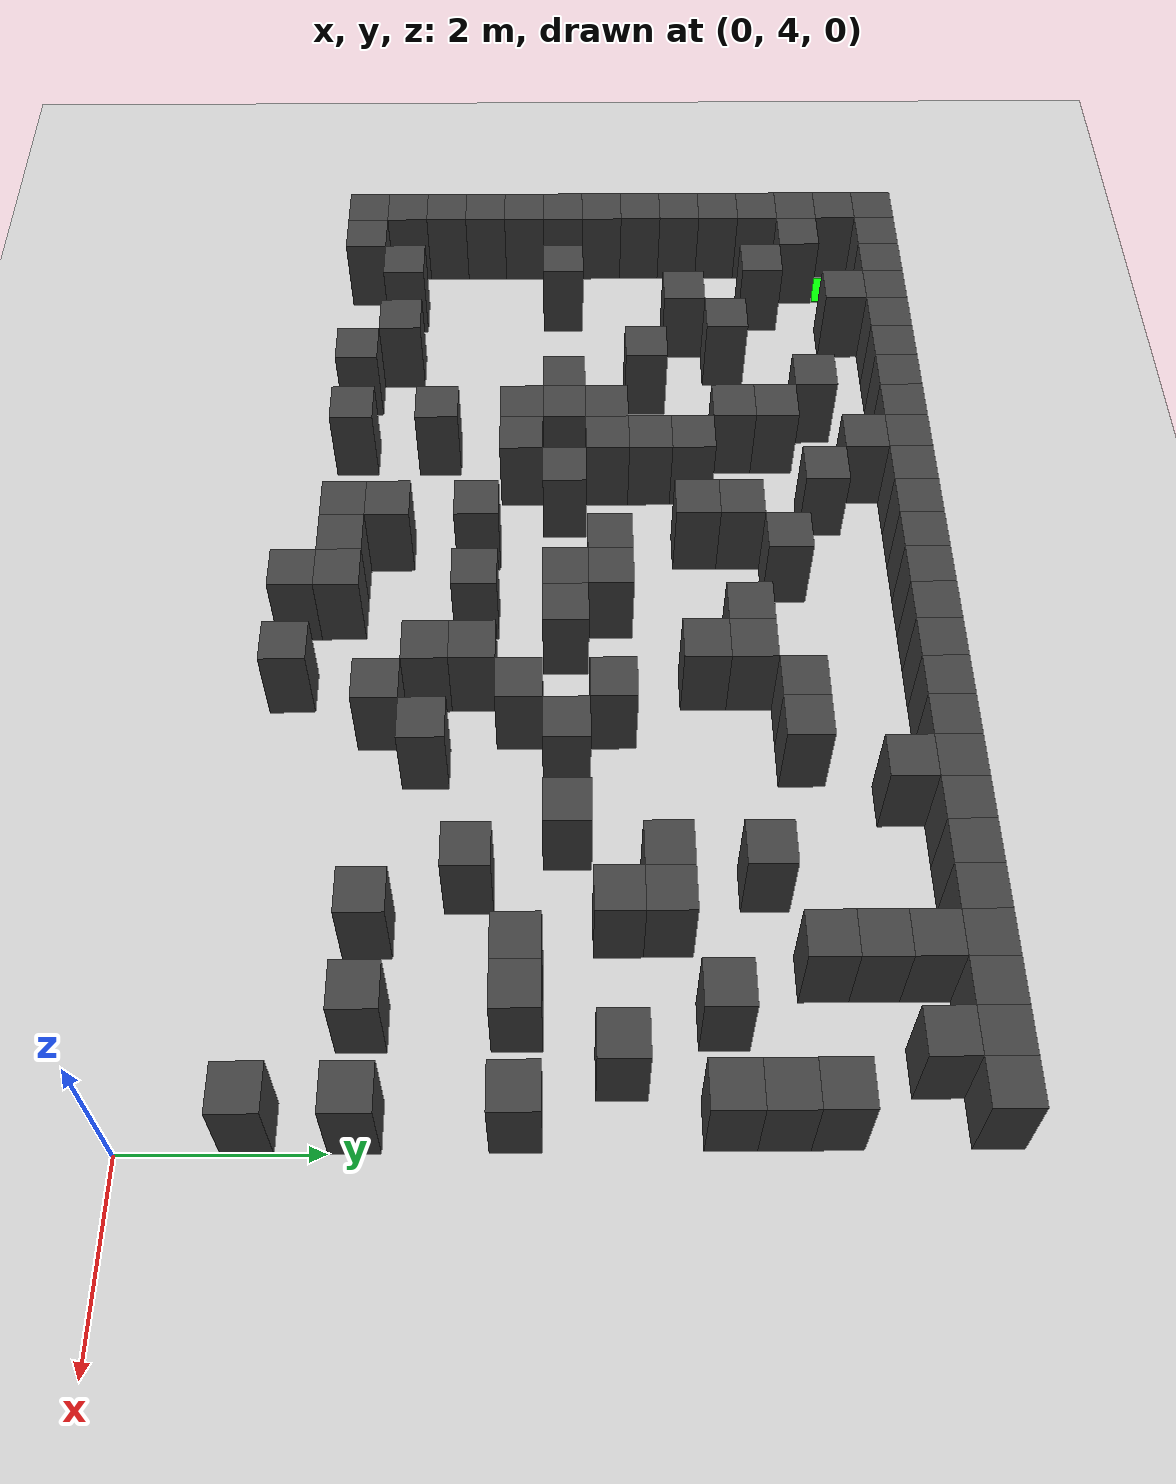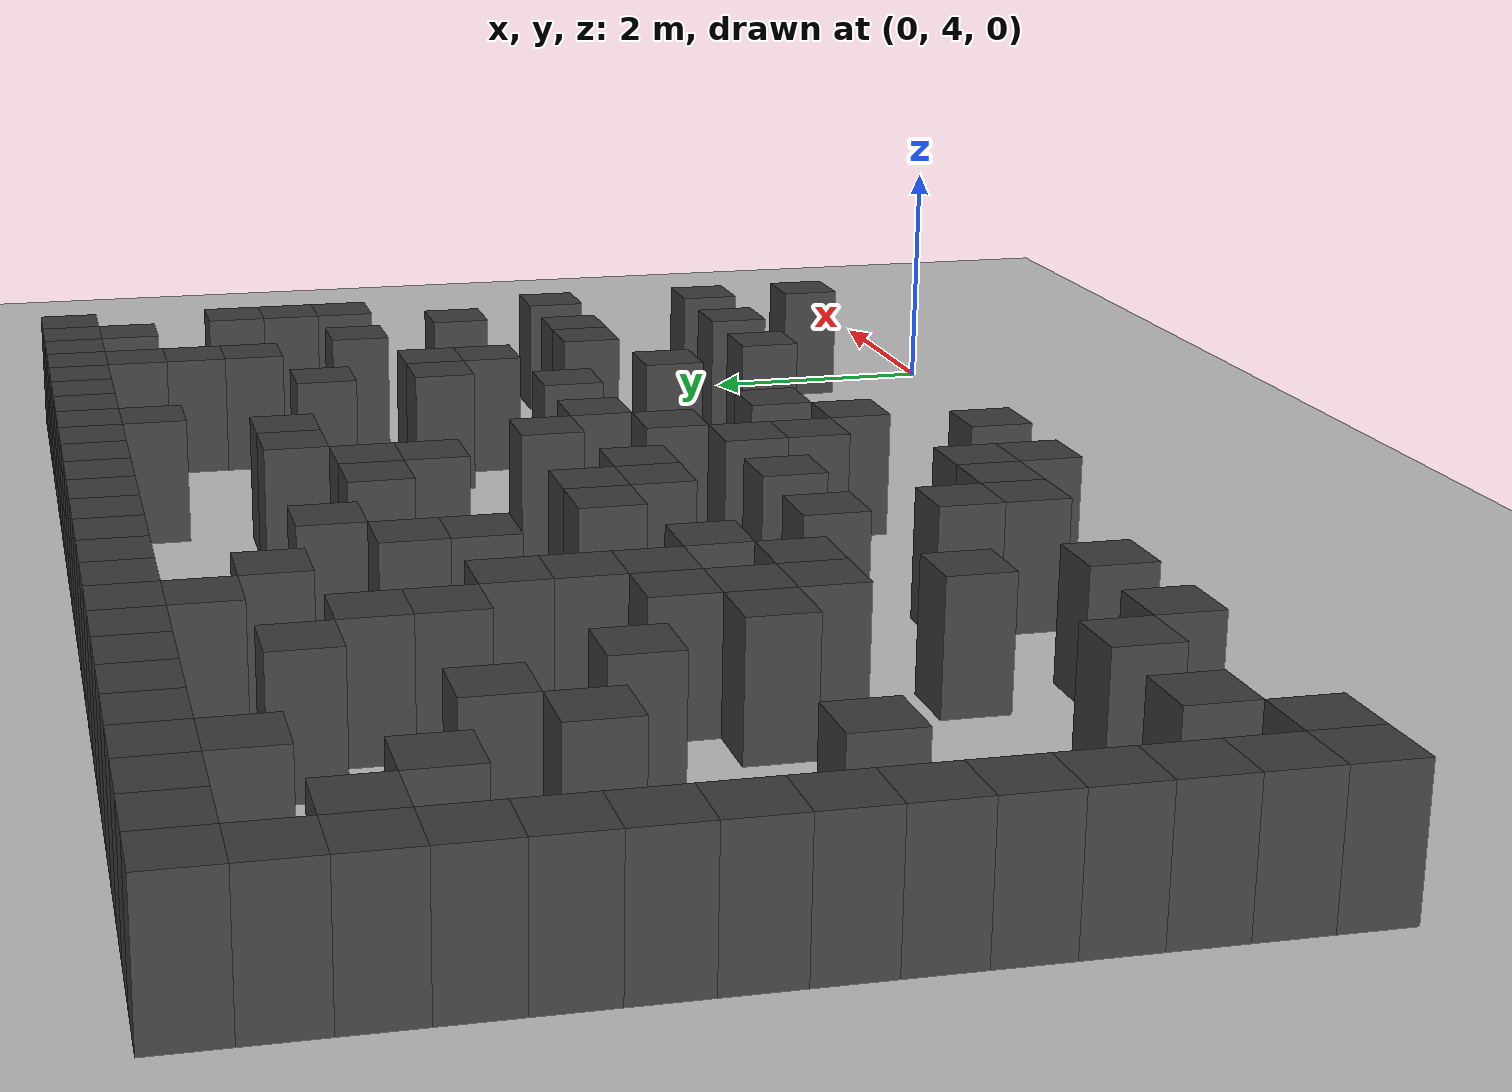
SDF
<sdf version="1.7">
 <world name="map_4492">
  <model name="ground_plane">
   <static>true</static>
   <link name="link">
    <collision name="collision">
     <geometry><plane><normal>0 0 1</normal><size>200 200</size></plane></geometry>
    </collision>
    <visual name="visual">
     <geometry><plane><normal>0 0 1</normal><size>200 200</size></plane></geometry>
     <material><ambient>0.8 0.8 0.8 1</ambient><diffuse>0.8 0.8 0.8 1</diffuse></material>
    </visual>
   </link>
  </model>
  <model name="maze_environment">
   <static>true</static>
   <link name="wall_0">
    <pose>-12.250 12.250 0.500 0 0 0</pose>
    <collision name="col"><geometry><box><size>0.5 0.5 1.0</size></box></geometry></collision>
    <visual name="vis">
     <geometry><box><size>0.5 0.5 1.0</size></box></geometry>
     <material><ambient>0.15 0.15 0.15 1</ambient><diffuse>0.25 0.25 0.25 1</diffuse></material>
    </visual>
   </link>
   <link name="wall_1">
    <pose>-11.750 12.250 0.500 0 0 0</pose>
    <collision name="col"><geometry><box><size>0.5 0.5 1.0</size></box></geometry></collision>
    <visual name="vis">
     <geometry><box><size>0.5 0.5 1.0</size></box></geometry>
     <material><ambient>0.15 0.15 0.15 1</ambient><diffuse>0.25 0.25 0.25 1</diffuse></material>
    </visual>
   </link>
   <link name="wall_2">
    <pose>-11.250 12.250 0.500 0 0 0</pose>
    <collision name="col"><geometry><box><size>0.5 0.5 1.0</size></box></geometry></collision>
    <visual name="vis">
     <geometry><box><size>0.5 0.5 1.0</size></box></geometry>
     <material><ambient>0.15 0.15 0.15 1</ambient><diffuse>0.25 0.25 0.25 1</diffuse></material>
    </visual>
   </link>
   <link name="wall_3">
    <pose>-10.750 12.250 0.500 0 0 0</pose>
    <collision name="col"><geometry><box><size>0.5 0.5 1.0</size></box></geometry></collision>
    <visual name="vis">
     <geometry><box><size>0.5 0.5 1.0</size></box></geometry>
     <material><ambient>0.15 0.15 0.15 1</ambient><diffuse>0.25 0.25 0.25 1</diffuse></material>
    </visual>
   </link>
   <link name="wall_4">
    <pose>-10.250 12.250 0.500 0 0 0</pose>
    <collision name="col"><geometry><box><size>0.5 0.5 1.0</size></box></geometry></collision>
    <visual name="vis">
     <geometry><box><size>0.5 0.5 1.0</size></box></geometry>
     <material><ambient>0.15 0.15 0.15 1</ambient><diffuse>0.25 0.25 0.25 1</diffuse></material>
    </visual>
   </link>
   <link name="wall_5">
    <pose>-9.750 12.250 0.500 0 0 0</pose>
    <collision name="col"><geometry><box><size>0.5 0.5 1.0</size></box></geometry></collision>
    <visual name="vis">
     <geometry><box><size>0.5 0.5 1.0</size></box></geometry>
     <material><ambient>0.15 0.15 0.15 1</ambient><diffuse>0.25 0.25 0.25 1</diffuse></material>
    </visual>
   </link>
   <link name="wall_6">
    <pose>-9.250 12.250 0.500 0 0 0</pose>
    <collision name="col"><geometry><box><size>0.5 0.5 1.0</size></box></geometry></collision>
    <visual name="vis">
     <geometry><box><size>0.5 0.5 1.0</size></box></geometry>
     <material><ambient>0.15 0.15 0.15 1</ambient><diffuse>0.25 0.25 0.25 1</diffuse></material>
    </visual>
   </link>
   <link name="wall_7">
    <pose>-8.750 12.250 0.500 0 0 0</pose>
    <collision name="col"><geometry><box><size>0.5 0.5 1.0</size></box></geometry></collision>
    <visual name="vis">
     <geometry><box><size>0.5 0.5 1.0</size></box></geometry>
     <material><ambient>0.15 0.15 0.15 1</ambient><diffuse>0.25 0.25 0.25 1</diffuse></material>
    </visual>
   </link>
   <link name="wall_8">
    <pose>-8.250 12.250 0.500 0 0 0</pose>
    <collision name="col"><geometry><box><size>0.5 0.5 1.0</size></box></geometry></collision>
    <visual name="vis">
     <geometry><box><size>0.5 0.5 1.0</size></box></geometry>
     <material><ambient>0.15 0.15 0.15 1</ambient><diffuse>0.25 0.25 0.25 1</diffuse></material>
    </visual>
   </link>
   <link name="wall_9">
    <pose>-7.750 12.250 0.500 0 0 0</pose>
    <collision name="col"><geometry><box><size>0.5 0.5 1.0</size></box></geometry></collision>
    <visual name="vis">
     <geometry><box><size>0.5 0.5 1.0</size></box></geometry>
     <material><ambient>0.15 0.15 0.15 1</ambient><diffuse>0.25 0.25 0.25 1</diffuse></material>
    </visual>
   </link>
   <link name="wall_10">
    <pose>-7.250 12.250 0.500 0 0 0</pose>
    <collision name="col"><geometry><box><size>0.5 0.5 1.0</size></box></geometry></collision>
    <visual name="vis">
     <geometry><box><size>0.5 0.5 1.0</size></box></geometry>
     <material><ambient>0.15 0.15 0.15 1</ambient><diffuse>0.25 0.25 0.25 1</diffuse></material>
    </visual>
   </link>
   <link name="wall_11">
    <pose>-6.750 12.250 0.500 0 0 0</pose>
    <collision name="col"><geometry><box><size>0.5 0.5 1.0</size></box></geometry></collision>
    <visual name="vis">
     <geometry><box><size>0.5 0.5 1.0</size></box></geometry>
     <material><ambient>0.15 0.15 0.15 1</ambient><diffuse>0.25 0.25 0.25 1</diffuse></material>
    </visual>
   </link>
   <link name="wall_12">
    <pose>-6.250 12.250 0.500 0 0 0</pose>
    <collision name="col"><geometry><box><size>0.5 0.5 1.0</size></box></geometry></collision>
    <visual name="vis">
     <geometry><box><size>0.5 0.5 1.0</size></box></geometry>
     <material><ambient>0.15 0.15 0.15 1</ambient><diffuse>0.25 0.25 0.25 1</diffuse></material>
    </visual>
   </link>
   <link name="wall_13">
    <pose>-5.750 12.250 0.500 0 0 0</pose>
    <collision name="col"><geometry><box><size>0.5 0.5 1.0</size></box></geometry></collision>
    <visual name="vis">
     <geometry><box><size>0.5 0.5 1.0</size></box></geometry>
     <material><ambient>0.15 0.15 0.15 1</ambient><diffuse>0.25 0.25 0.25 1</diffuse></material>
    </visual>
   </link>
   <link name="wall_14">
    <pose>-5.250 12.250 0.500 0 0 0</pose>
    <collision name="col"><geometry><box><size>0.5 0.5 1.0</size></box></geometry></collision>
    <visual name="vis">
     <geometry><box><size>0.5 0.5 1.0</size></box></geometry>
     <material><ambient>0.15 0.15 0.15 1</ambient><diffuse>0.25 0.25 0.25 1</diffuse></material>
    </visual>
   </link>
   <link name="wall_15">
    <pose>-4.750 12.250 0.500 0 0 0</pose>
    <collision name="col"><geometry><box><size>0.5 0.5 1.0</size></box></geometry></collision>
    <visual name="vis">
     <geometry><box><size>0.5 0.5 1.0</size></box></geometry>
     <material><ambient>0.15 0.15 0.15 1</ambient><diffuse>0.25 0.25 0.25 1</diffuse></material>
    </visual>
   </link>
   <link name="wall_16">
    <pose>-4.250 12.250 0.500 0 0 0</pose>
    <collision name="col"><geometry><box><size>0.5 0.5 1.0</size></box></geometry></collision>
    <visual name="vis">
     <geometry><box><size>0.5 0.5 1.0</size></box></geometry>
     <material><ambient>0.15 0.15 0.15 1</ambient><diffuse>0.25 0.25 0.25 1</diffuse></material>
    </visual>
   </link>
   <link name="wall_17">
    <pose>-3.750 12.250 0.500 0 0 0</pose>
    <collision name="col"><geometry><box><size>0.5 0.5 1.0</size></box></geometry></collision>
    <visual name="vis">
     <geometry><box><size>0.5 0.5 1.0</size></box></geometry>
     <material><ambient>0.15 0.15 0.15 1</ambient><diffuse>0.25 0.25 0.25 1</diffuse></material>
    </visual>
   </link>
   <link name="wall_18">
    <pose>-3.250 12.250 0.500 0 0 0</pose>
    <collision name="col"><geometry><box><size>0.5 0.5 1.0</size></box></geometry></collision>
    <visual name="vis">
     <geometry><box><size>0.5 0.5 1.0</size></box></geometry>
     <material><ambient>0.15 0.15 0.15 1</ambient><diffuse>0.25 0.25 0.25 1</diffuse></material>
    </visual>
   </link>
   <link name="wall_19">
    <pose>-2.750 12.250 0.500 0 0 0</pose>
    <collision name="col"><geometry><box><size>0.5 0.5 1.0</size></box></geometry></collision>
    <visual name="vis">
     <geometry><box><size>0.5 0.5 1.0</size></box></geometry>
     <material><ambient>0.15 0.15 0.15 1</ambient><diffuse>0.25 0.25 0.25 1</diffuse></material>
    </visual>
   </link>
   <link name="wall_20">
    <pose>-2.250 12.250 0.500 0 0 0</pose>
    <collision name="col"><geometry><box><size>0.5 0.5 1.0</size></box></geometry></collision>
    <visual name="vis">
     <geometry><box><size>0.5 0.5 1.0</size></box></geometry>
     <material><ambient>0.15 0.15 0.15 1</ambient><diffuse>0.25 0.25 0.25 1</diffuse></material>
    </visual>
   </link>
   <link name="wall_21">
    <pose>-1.750 12.250 0.500 0 0 0</pose>
    <collision name="col"><geometry><box><size>0.5 0.5 1.0</size></box></geometry></collision>
    <visual name="vis">
     <geometry><box><size>0.5 0.5 1.0</size></box></geometry>
     <material><ambient>0.15 0.15 0.15 1</ambient><diffuse>0.25 0.25 0.25 1</diffuse></material>
    </visual>
   </link>
   <link name="wall_22">
    <pose>-1.250 12.250 0.500 0 0 0</pose>
    <collision name="col"><geometry><box><size>0.5 0.5 1.0</size></box></geometry></collision>
    <visual name="vis">
     <geometry><box><size>0.5 0.5 1.0</size></box></geometry>
     <material><ambient>0.15 0.15 0.15 1</ambient><diffuse>0.25 0.25 0.25 1</diffuse></material>
    </visual>
   </link>
   <link name="wall_23">
    <pose>-0.750 12.250 0.500 0 0 0</pose>
    <collision name="col"><geometry><box><size>0.5 0.5 1.0</size></box></geometry></collision>
    <visual name="vis">
     <geometry><box><size>0.5 0.5 1.0</size></box></geometry>
     <material><ambient>0.15 0.15 0.15 1</ambient><diffuse>0.25 0.25 0.25 1</diffuse></material>
    </visual>
   </link>
   <link name="wall_24">
    <pose>-0.250 12.250 0.500 0 0 0</pose>
    <collision name="col"><geometry><box><size>0.5 0.5 1.0</size></box></geometry></collision>
    <visual name="vis">
     <geometry><box><size>0.5 0.5 1.0</size></box></geometry>
     <material><ambient>0.15 0.15 0.15 1</ambient><diffuse>0.25 0.25 0.25 1</diffuse></material>
    </visual>
   </link>
   <link name="wall_50">
    <pose>-12.250 11.750 0.500 0 0 0</pose>
    <collision name="col"><geometry><box><size>0.5 0.5 1.0</size></box></geometry></collision>
    <visual name="vis">
     <geometry><box><size>0.5 0.5 1.0</size></box></geometry>
     <material><ambient>0.15 0.15 0.15 1</ambient><diffuse>0.25 0.25 0.25 1</diffuse></material>
    </visual>
   </link>
   <link name="wall_51">
    <pose>-10.750 11.750 0.500 0 0 0</pose>
    <collision name="col"><geometry><box><size>0.5 0.5 1.0</size></box></geometry></collision>
    <visual name="vis">
     <geometry><box><size>0.5 0.5 1.0</size></box></geometry>
     <material><ambient>0.15 0.15 0.15 1</ambient><diffuse>0.25 0.25 0.25 1</diffuse></material>
    </visual>
   </link>
   <link name="wall_52">
    <pose>-8.250 11.750 0.500 0 0 0</pose>
    <collision name="col"><geometry><box><size>0.5 0.5 1.0</size></box></geometry></collision>
    <visual name="vis">
     <geometry><box><size>0.5 0.5 1.0</size></box></geometry>
     <material><ambient>0.15 0.15 0.15 1</ambient><diffuse>0.25 0.25 0.25 1</diffuse></material>
    </visual>
   </link>
   <link name="wall_53">
    <pose>-3.750 11.750 0.500 0 0 0</pose>
    <collision name="col"><geometry><box><size>0.5 0.5 1.0</size></box></geometry></collision>
    <visual name="vis">
     <geometry><box><size>0.5 0.5 1.0</size></box></geometry>
     <material><ambient>0.15 0.15 0.15 1</ambient><diffuse>0.25 0.25 0.25 1</diffuse></material>
    </visual>
   </link>
   <link name="wall_54">
    <pose>-1.750 11.750 0.500 0 0 0</pose>
    <collision name="col"><geometry><box><size>0.5 0.5 1.0</size></box></geometry></collision>
    <visual name="vis">
     <geometry><box><size>0.5 0.5 1.0</size></box></geometry>
     <material><ambient>0.15 0.15 0.15 1</ambient><diffuse>0.25 0.25 0.25 1</diffuse></material>
    </visual>
   </link>
   <link name="wall_55">
    <pose>-0.750 11.750 0.500 0 0 0</pose>
    <collision name="col"><geometry><box><size>0.5 0.5 1.0</size></box></geometry></collision>
    <visual name="vis">
     <geometry><box><size>0.5 0.5 1.0</size></box></geometry>
     <material><ambient>0.15 0.15 0.15 1</ambient><diffuse>0.25 0.25 0.25 1</diffuse></material>
    </visual>
   </link>
   <link name="wall_63">
    <pose>-12.250 11.250 0.500 0 0 0</pose>
    <collision name="col"><geometry><box><size>0.5 0.5 1.0</size></box></geometry></collision>
    <visual name="vis">
     <geometry><box><size>0.5 0.5 1.0</size></box></geometry>
     <material><ambient>0.15 0.15 0.15 1</ambient><diffuse>0.25 0.25 0.25 1</diffuse></material>
    </visual>
   </link>
   <link name="wall_64">
    <pose>-11.750 11.250 0.500 0 0 0</pose>
    <collision name="col"><geometry><box><size>0.5 0.5 1.0</size></box></geometry></collision>
    <visual name="vis">
     <geometry><box><size>0.5 0.5 1.0</size></box></geometry>
     <material><ambient>0.15 0.15 0.15 1</ambient><diffuse>0.25 0.25 0.25 1</diffuse></material>
    </visual>
   </link>
   <link name="wall_65">
    <pose>-9.250 11.250 0.500 0 0 0</pose>
    <collision name="col"><geometry><box><size>0.5 0.5 1.0</size></box></geometry></collision>
    <visual name="vis">
     <geometry><box><size>0.5 0.5 1.0</size></box></geometry>
     <material><ambient>0.15 0.15 0.15 1</ambient><diffuse>0.25 0.25 0.25 1</diffuse></material>
    </visual>
   </link>
   <link name="wall_66">
    <pose>-7.750 11.250 0.500 0 0 0</pose>
    <collision name="col"><geometry><box><size>0.5 0.5 1.0</size></box></geometry></collision>
    <visual name="vis">
     <geometry><box><size>0.5 0.5 1.0</size></box></geometry>
     <material><ambient>0.15 0.15 0.15 1</ambient><diffuse>0.25 0.25 0.25 1</diffuse></material>
    </visual>
   </link>
   <link name="wall_67">
    <pose>-1.750 11.250 0.500 0 0 0</pose>
    <collision name="col"><geometry><box><size>0.5 0.5 1.0</size></box></geometry></collision>
    <visual name="vis">
     <geometry><box><size>0.5 0.5 1.0</size></box></geometry>
     <material><ambient>0.15 0.15 0.15 1</ambient><diffuse>0.25 0.25 0.25 1</diffuse></material>
    </visual>
   </link>
   <link name="wall_74">
    <pose>-12.250 10.750 0.500 0 0 0</pose>
    <collision name="col"><geometry><box><size>0.5 0.5 1.0</size></box></geometry></collision>
    <visual name="vis">
     <geometry><box><size>0.5 0.5 1.0</size></box></geometry>
     <material><ambient>0.15 0.15 0.15 1</ambient><diffuse>0.25 0.25 0.25 1</diffuse></material>
    </visual>
   </link>
   <link name="wall_75">
    <pose>-11.250 10.750 0.500 0 0 0</pose>
    <collision name="col"><geometry><box><size>0.5 0.5 1.0</size></box></geometry></collision>
    <visual name="vis">
     <geometry><box><size>0.5 0.5 1.0</size></box></geometry>
     <material><ambient>0.15 0.15 0.15 1</ambient><diffuse>0.25 0.25 0.25 1</diffuse></material>
    </visual>
   </link>
   <link name="wall_76">
    <pose>-8.750 10.750 0.500 0 0 0</pose>
    <collision name="col"><geometry><box><size>0.5 0.5 1.0</size></box></geometry></collision>
    <visual name="vis">
     <geometry><box><size>0.5 0.5 1.0</size></box></geometry>
     <material><ambient>0.15 0.15 0.15 1</ambient><diffuse>0.25 0.25 0.25 1</diffuse></material>
    </visual>
   </link>
   <link name="wall_77">
    <pose>-6.750 10.750 0.500 0 0 0</pose>
    <collision name="col"><geometry><box><size>0.5 0.5 1.0</size></box></geometry></collision>
    <visual name="vis">
     <geometry><box><size>0.5 0.5 1.0</size></box></geometry>
     <material><ambient>0.15 0.15 0.15 1</ambient><diffuse>0.25 0.25 0.25 1</diffuse></material>
    </visual>
   </link>
   <link name="wall_78">
    <pose>-4.750 10.750 0.500 0 0 0</pose>
    <collision name="col"><geometry><box><size>0.5 0.5 1.0</size></box></geometry></collision>
    <visual name="vis">
     <geometry><box><size>0.5 0.5 1.0</size></box></geometry>
     <material><ambient>0.15 0.15 0.15 1</ambient><diffuse>0.25 0.25 0.25 1</diffuse></material>
    </visual>
   </link>
   <link name="wall_79">
    <pose>-4.250 10.750 0.500 0 0 0</pose>
    <collision name="col"><geometry><box><size>0.5 0.5 1.0</size></box></geometry></collision>
    <visual name="vis">
     <geometry><box><size>0.5 0.5 1.0</size></box></geometry>
     <material><ambient>0.15 0.15 0.15 1</ambient><diffuse>0.25 0.25 0.25 1</diffuse></material>
    </visual>
   </link>
   <link name="wall_80">
    <pose>-1.750 10.750 0.500 0 0 0</pose>
    <collision name="col"><geometry><box><size>0.5 0.5 1.0</size></box></geometry></collision>
    <visual name="vis">
     <geometry><box><size>0.5 0.5 1.0</size></box></geometry>
     <material><ambient>0.15 0.15 0.15 1</ambient><diffuse>0.25 0.25 0.25 1</diffuse></material>
    </visual>
   </link>
   <link name="wall_81">
    <pose>-0.250 10.750 0.500 0 0 0</pose>
    <collision name="col"><geometry><box><size>0.5 0.5 1.0</size></box></geometry></collision>
    <visual name="vis">
     <geometry><box><size>0.5 0.5 1.0</size></box></geometry>
     <material><ambient>0.15 0.15 0.15 1</ambient><diffuse>0.25 0.25 0.25 1</diffuse></material>
    </visual>
   </link>
   <link name="wall_90">
    <pose>-12.250 10.250 0.500 0 0 0</pose>
    <collision name="col"><geometry><box><size>0.5 0.5 1.0</size></box></geometry></collision>
    <visual name="vis">
     <geometry><box><size>0.5 0.5 1.0</size></box></geometry>
     <material><ambient>0.15 0.15 0.15 1</ambient><diffuse>0.25 0.25 0.25 1</diffuse></material>
    </visual>
   </link>
   <link name="wall_91">
    <pose>-10.250 10.250 0.500 0 0 0</pose>
    <collision name="col"><geometry><box><size>0.5 0.5 1.0</size></box></geometry></collision>
    <visual name="vis">
     <geometry><box><size>0.5 0.5 1.0</size></box></geometry>
     <material><ambient>0.15 0.15 0.15 1</ambient><diffuse>0.25 0.25 0.25 1</diffuse></material>
    </visual>
   </link>
   <link name="wall_92">
    <pose>-8.750 10.250 0.500 0 0 0</pose>
    <collision name="col"><geometry><box><size>0.5 0.5 1.0</size></box></geometry></collision>
    <visual name="vis">
     <geometry><box><size>0.5 0.5 1.0</size></box></geometry>
     <material><ambient>0.15 0.15 0.15 1</ambient><diffuse>0.25 0.25 0.25 1</diffuse></material>
    </visual>
   </link>
   <link name="wall_93">
    <pose>-7.250 10.250 0.500 0 0 0</pose>
    <collision name="col"><geometry><box><size>0.5 0.5 1.0</size></box></geometry></collision>
    <visual name="vis">
     <geometry><box><size>0.5 0.5 1.0</size></box></geometry>
     <material><ambient>0.15 0.15 0.15 1</ambient><diffuse>0.25 0.25 0.25 1</diffuse></material>
    </visual>
   </link>
   <link name="wall_94">
    <pose>-5.750 10.250 0.500 0 0 0</pose>
    <collision name="col"><geometry><box><size>0.5 0.5 1.0</size></box></geometry></collision>
    <visual name="vis">
     <geometry><box><size>0.5 0.5 1.0</size></box></geometry>
     <material><ambient>0.15 0.15 0.15 1</ambient><diffuse>0.25 0.25 0.25 1</diffuse></material>
    </visual>
   </link>
   <link name="wall_95">
    <pose>-5.250 10.250 0.500 0 0 0</pose>
    <collision name="col"><geometry><box><size>0.5 0.5 1.0</size></box></geometry></collision>
    <visual name="vis">
     <geometry><box><size>0.5 0.5 1.0</size></box></geometry>
     <material><ambient>0.15 0.15 0.15 1</ambient><diffuse>0.25 0.25 0.25 1</diffuse></material>
    </visual>
   </link>
   <link name="wall_96">
    <pose>-2.750 10.250 0.500 0 0 0</pose>
    <collision name="col"><geometry><box><size>0.5 0.5 1.0</size></box></geometry></collision>
    <visual name="vis">
     <geometry><box><size>0.5 0.5 1.0</size></box></geometry>
     <material><ambient>0.15 0.15 0.15 1</ambient><diffuse>0.25 0.25 0.25 1</diffuse></material>
    </visual>
   </link>
   <link name="wall_97">
    <pose>-0.250 10.250 0.500 0 0 0</pose>
    <collision name="col"><geometry><box><size>0.5 0.5 1.0</size></box></geometry></collision>
    <visual name="vis">
     <geometry><box><size>0.5 0.5 1.0</size></box></geometry>
     <material><ambient>0.15 0.15 0.15 1</ambient><diffuse>0.25 0.25 0.25 1</diffuse></material>
    </visual>
   </link>
   <link name="wall_102">
    <pose>-12.250 9.750 0.500 0 0 0</pose>
    <collision name="col"><geometry><box><size>0.5 0.5 1.0</size></box></geometry></collision>
    <visual name="vis">
     <geometry><box><size>0.5 0.5 1.0</size></box></geometry>
     <material><ambient>0.15 0.15 0.15 1</ambient><diffuse>0.25 0.25 0.25 1</diffuse></material>
    </visual>
   </link>
   <link name="wall_103">
    <pose>-10.750 9.750 0.500 0 0 0</pose>
    <collision name="col"><geometry><box><size>0.5 0.5 1.0</size></box></geometry></collision>
    <visual name="vis">
     <geometry><box><size>0.5 0.5 1.0</size></box></geometry>
     <material><ambient>0.15 0.15 0.15 1</ambient><diffuse>0.25 0.25 0.25 1</diffuse></material>
    </visual>
   </link>
   <link name="wall_104">
    <pose>-8.250 9.750 0.500 0 0 0</pose>
    <collision name="col"><geometry><box><size>0.5 0.5 1.0</size></box></geometry></collision>
    <visual name="vis">
     <geometry><box><size>0.5 0.5 1.0</size></box></geometry>
     <material><ambient>0.15 0.15 0.15 1</ambient><diffuse>0.25 0.25 0.25 1</diffuse></material>
    </visual>
   </link>
   <link name="wall_105">
    <pose>-7.250 9.750 0.500 0 0 0</pose>
    <collision name="col"><geometry><box><size>0.5 0.5 1.0</size></box></geometry></collision>
    <visual name="vis">
     <geometry><box><size>0.5 0.5 1.0</size></box></geometry>
     <material><ambient>0.15 0.15 0.15 1</ambient><diffuse>0.25 0.25 0.25 1</diffuse></material>
    </visual>
   </link>
   <link name="wall_106">
    <pose>-5.250 9.750 0.500 0 0 0</pose>
    <collision name="col"><geometry><box><size>0.5 0.5 1.0</size></box></geometry></collision>
    <visual name="vis">
     <geometry><box><size>0.5 0.5 1.0</size></box></geometry>
     <material><ambient>0.15 0.15 0.15 1</ambient><diffuse>0.25 0.25 0.25 1</diffuse></material>
    </visual>
   </link>
   <link name="wall_107">
    <pose>-1.250 9.750 0.500 0 0 0</pose>
    <collision name="col"><geometry><box><size>0.5 0.5 1.0</size></box></geometry></collision>
    <visual name="vis">
     <geometry><box><size>0.5 0.5 1.0</size></box></geometry>
     <material><ambient>0.15 0.15 0.15 1</ambient><diffuse>0.25 0.25 0.25 1</diffuse></material>
    </visual>
   </link>
   <link name="wall_108">
    <pose>-0.250 9.750 0.500 0 0 0</pose>
    <collision name="col"><geometry><box><size>0.5 0.5 1.0</size></box></geometry></collision>
    <visual name="vis">
     <geometry><box><size>0.5 0.5 1.0</size></box></geometry>
     <material><ambient>0.15 0.15 0.15 1</ambient><diffuse>0.25 0.25 0.25 1</diffuse></material>
    </visual>
   </link>
   <link name="wall_115">
    <pose>-12.250 9.250 0.500 0 0 0</pose>
    <collision name="col"><geometry><box><size>0.5 0.5 1.0</size></box></geometry></collision>
    <visual name="vis">
     <geometry><box><size>0.5 0.5 1.0</size></box></geometry>
     <material><ambient>0.15 0.15 0.15 1</ambient><diffuse>0.25 0.25 0.25 1</diffuse></material>
    </visual>
   </link>
   <link name="wall_116">
    <pose>-9.750 9.250 0.500 0 0 0</pose>
    <collision name="col"><geometry><box><size>0.5 0.5 1.0</size></box></geometry></collision>
    <visual name="vis">
     <geometry><box><size>0.5 0.5 1.0</size></box></geometry>
     <material><ambient>0.15 0.15 0.15 1</ambient><diffuse>0.25 0.25 0.25 1</diffuse></material>
    </visual>
   </link>
   <link name="wall_117">
    <pose>-8.250 9.250 0.500 0 0 0</pose>
    <collision name="col"><geometry><box><size>0.5 0.5 1.0</size></box></geometry></collision>
    <visual name="vis">
     <geometry><box><size>0.5 0.5 1.0</size></box></geometry>
     <material><ambient>0.15 0.15 0.15 1</ambient><diffuse>0.25 0.25 0.25 1</diffuse></material>
    </visual>
   </link>
   <link name="wall_118">
    <pose>-2.750 9.250 0.500 0 0 0</pose>
    <collision name="col"><geometry><box><size>0.5 0.5 1.0</size></box></geometry></collision>
    <visual name="vis">
     <geometry><box><size>0.5 0.5 1.0</size></box></geometry>
     <material><ambient>0.15 0.15 0.15 1</ambient><diffuse>0.25 0.25 0.25 1</diffuse></material>
    </visual>
   </link>
   <link name="wall_119">
    <pose>-2.250 9.250 0.500 0 0 0</pose>
    <collision name="col"><geometry><box><size>0.5 0.5 1.0</size></box></geometry></collision>
    <visual name="vis">
     <geometry><box><size>0.5 0.5 1.0</size></box></geometry>
     <material><ambient>0.15 0.15 0.15 1</ambient><diffuse>0.25 0.25 0.25 1</diffuse></material>
    </visual>
   </link>
   <link name="wall_126">
    <pose>-12.250 8.750 0.500 0 0 0</pose>
    <collision name="col"><geometry><box><size>0.5 0.5 1.0</size></box></geometry></collision>
    <visual name="vis">
     <geometry><box><size>0.5 0.5 1.0</size></box></geometry>
     <material><ambient>0.15 0.15 0.15 1</ambient><diffuse>0.25 0.25 0.25 1</diffuse></material>
    </visual>
   </link>
   <link name="wall_127">
    <pose>-8.750 8.750 0.500 0 0 0</pose>
    <collision name="col"><geometry><box><size>0.5 0.5 1.0</size></box></geometry></collision>
    <visual name="vis">
     <geometry><box><size>0.5 0.5 1.0</size></box></geometry>
     <material><ambient>0.15 0.15 0.15 1</ambient><diffuse>0.25 0.25 0.25 1</diffuse></material>
    </visual>
   </link>
   <link name="wall_128">
    <pose>-8.250 8.750 0.500 0 0 0</pose>
    <collision name="col"><geometry><box><size>0.5 0.5 1.0</size></box></geometry></collision>
    <visual name="vis">
     <geometry><box><size>0.5 0.5 1.0</size></box></geometry>
     <material><ambient>0.15 0.15 0.15 1</ambient><diffuse>0.25 0.25 0.25 1</diffuse></material>
    </visual>
   </link>
   <link name="wall_129">
    <pose>-6.750 8.750 0.500 0 0 0</pose>
    <collision name="col"><geometry><box><size>0.5 0.5 1.0</size></box></geometry></collision>
    <visual name="vis">
     <geometry><box><size>0.5 0.5 1.0</size></box></geometry>
     <material><ambient>0.15 0.15 0.15 1</ambient><diffuse>0.25 0.25 0.25 1</diffuse></material>
    </visual>
   </link>
   <link name="wall_130">
    <pose>-6.250 8.750 0.500 0 0 0</pose>
    <collision name="col"><geometry><box><size>0.5 0.5 1.0</size></box></geometry></collision>
    <visual name="vis">
     <geometry><box><size>0.5 0.5 1.0</size></box></geometry>
     <material><ambient>0.15 0.15 0.15 1</ambient><diffuse>0.25 0.25 0.25 1</diffuse></material>
    </visual>
   </link>
   <link name="wall_131">
    <pose>-4.750 8.750 0.500 0 0 0</pose>
    <collision name="col"><geometry><box><size>0.5 0.5 1.0</size></box></geometry></collision>
    <visual name="vis">
     <geometry><box><size>0.5 0.5 1.0</size></box></geometry>
     <material><ambient>0.15 0.15 0.15 1</ambient><diffuse>0.25 0.25 0.25 1</diffuse></material>
    </visual>
   </link>
   <link name="wall_132">
    <pose>-2.250 8.750 0.500 0 0 0</pose>
    <collision name="col"><geometry><box><size>0.5 0.5 1.0</size></box></geometry></collision>
    <visual name="vis">
     <geometry><box><size>0.5 0.5 1.0</size></box></geometry>
     <material><ambient>0.15 0.15 0.15 1</ambient><diffuse>0.25 0.25 0.25 1</diffuse></material>
    </visual>
   </link>
   <link name="wall_133">
    <pose>-0.750 8.750 0.500 0 0 0</pose>
    <collision name="col"><geometry><box><size>0.5 0.5 1.0</size></box></geometry></collision>
    <visual name="vis">
     <geometry><box><size>0.5 0.5 1.0</size></box></geometry>
     <material><ambient>0.15 0.15 0.15 1</ambient><diffuse>0.25 0.25 0.25 1</diffuse></material>
    </visual>
   </link>
   <link name="wall_140">
    <pose>-12.250 8.250 0.500 0 0 0</pose>
    <collision name="col"><geometry><box><size>0.5 0.5 1.0</size></box></geometry></collision>
    <visual name="vis">
     <geometry><box><size>0.5 0.5 1.0</size></box></geometry>
     <material><ambient>0.15 0.15 0.15 1</ambient><diffuse>0.25 0.25 0.25 1</diffuse></material>
    </visual>
   </link>
   <link name="wall_141">
    <pose>-11.250 8.250 0.500 0 0 0</pose>
    <collision name="col"><geometry><box><size>0.5 0.5 1.0</size></box></geometry></collision>
    <visual name="vis">
     <geometry><box><size>0.5 0.5 1.0</size></box></geometry>
     <material><ambient>0.15 0.15 0.15 1</ambient><diffuse>0.25 0.25 0.25 1</diffuse></material>
    </visual>
   </link>
   <link name="wall_142">
    <pose>-9.250 8.250 0.500 0 0 0</pose>
    <collision name="col"><geometry><box><size>0.5 0.5 1.0</size></box></geometry></collision>
    <visual name="vis">
     <geometry><box><size>0.5 0.5 1.0</size></box></geometry>
     <material><ambient>0.15 0.15 0.15 1</ambient><diffuse>0.25 0.25 0.25 1</diffuse></material>
    </visual>
   </link>
   <link name="wall_143">
    <pose>-8.750 8.250 0.500 0 0 0</pose>
    <collision name="col"><geometry><box><size>0.5 0.5 1.0</size></box></geometry></collision>
    <visual name="vis">
     <geometry><box><size>0.5 0.5 1.0</size></box></geometry>
     <material><ambient>0.15 0.15 0.15 1</ambient><diffuse>0.25 0.25 0.25 1</diffuse></material>
    </visual>
   </link>
   <link name="wall_144">
    <pose>-7.750 8.250 0.500 0 0 0</pose>
    <collision name="col"><geometry><box><size>0.5 0.5 1.0</size></box></geometry></collision>
    <visual name="vis">
     <geometry><box><size>0.5 0.5 1.0</size></box></geometry>
     <material><ambient>0.15 0.15 0.15 1</ambient><diffuse>0.25 0.25 0.25 1</diffuse></material>
    </visual>
   </link>
   <link name="wall_145">
    <pose>-6.250 8.250 0.500 0 0 0</pose>
    <collision name="col"><geometry><box><size>0.5 0.5 1.0</size></box></geometry></collision>
    <visual name="vis">
     <geometry><box><size>0.5 0.5 1.0</size></box></geometry>
     <material><ambient>0.15 0.15 0.15 1</ambient><diffuse>0.25 0.25 0.25 1</diffuse></material>
    </visual>
   </link>
   <link name="wall_146">
    <pose>-5.750 8.250 0.500 0 0 0</pose>
    <collision name="col"><geometry><box><size>0.5 0.5 1.0</size></box></geometry></collision>
    <visual name="vis">
     <geometry><box><size>0.5 0.5 1.0</size></box></geometry>
     <material><ambient>0.15 0.15 0.15 1</ambient><diffuse>0.25 0.25 0.25 1</diffuse></material>
    </visual>
   </link>
   <link name="wall_147">
    <pose>-4.250 8.250 0.500 0 0 0</pose>
    <collision name="col"><geometry><box><size>0.5 0.5 1.0</size></box></geometry></collision>
    <visual name="vis">
     <geometry><box><size>0.5 0.5 1.0</size></box></geometry>
     <material><ambient>0.15 0.15 0.15 1</ambient><diffuse>0.25 0.25 0.25 1</diffuse></material>
    </visual>
   </link>
   <link name="wall_148">
    <pose>-3.250 8.250 0.500 0 0 0</pose>
    <collision name="col"><geometry><box><size>0.5 0.5 1.0</size></box></geometry></collision>
    <visual name="vis">
     <geometry><box><size>0.5 0.5 1.0</size></box></geometry>
     <material><ambient>0.15 0.15 0.15 1</ambient><diffuse>0.25 0.25 0.25 1</diffuse></material>
    </visual>
   </link>
   <link name="wall_156">
    <pose>-12.250 7.750 0.500 0 0 0</pose>
    <collision name="col"><geometry><box><size>0.5 0.5 1.0</size></box></geometry></collision>
    <visual name="vis">
     <geometry><box><size>0.5 0.5 1.0</size></box></geometry>
     <material><ambient>0.15 0.15 0.15 1</ambient><diffuse>0.25 0.25 0.25 1</diffuse></material>
    </visual>
   </link>
   <link name="wall_157">
    <pose>-8.750 7.750 0.500 0 0 0</pose>
    <collision name="col"><geometry><box><size>0.5 0.5 1.0</size></box></geometry></collision>
    <visual name="vis">
     <geometry><box><size>0.5 0.5 1.0</size></box></geometry>
     <material><ambient>0.15 0.15 0.15 1</ambient><diffuse>0.25 0.25 0.25 1</diffuse></material>
    </visual>
   </link>
   <link name="wall_158">
    <pose>-8.250 7.750 0.500 0 0 0</pose>
    <collision name="col"><geometry><box><size>0.5 0.5 1.0</size></box></geometry></collision>
    <visual name="vis">
     <geometry><box><size>0.5 0.5 1.0</size></box></geometry>
     <material><ambient>0.15 0.15 0.15 1</ambient><diffuse>0.25 0.25 0.25 1</diffuse></material>
    </visual>
   </link>
   <link name="wall_159">
    <pose>-4.750 7.750 0.500 0 0 0</pose>
    <collision name="col"><geometry><box><size>0.5 0.5 1.0</size></box></geometry></collision>
    <visual name="vis">
     <geometry><box><size>0.5 0.5 1.0</size></box></geometry>
     <material><ambient>0.15 0.15 0.15 1</ambient><diffuse>0.25 0.25 0.25 1</diffuse></material>
    </visual>
   </link>
   <link name="wall_160">
    <pose>-1.750 7.750 0.500 0 0 0</pose>
    <collision name="col"><geometry><box><size>0.5 0.5 1.0</size></box></geometry></collision>
    <visual name="vis">
     <geometry><box><size>0.5 0.5 1.0</size></box></geometry>
     <material><ambient>0.15 0.15 0.15 1</ambient><diffuse>0.25 0.25 0.25 1</diffuse></material>
    </visual>
   </link>
   <link name="wall_161">
    <pose>-1.250 7.750 0.500 0 0 0</pose>
    <collision name="col"><geometry><box><size>0.5 0.5 1.0</size></box></geometry></collision>
    <visual name="vis">
     <geometry><box><size>0.5 0.5 1.0</size></box></geometry>
     <material><ambient>0.15 0.15 0.15 1</ambient><diffuse>0.25 0.25 0.25 1</diffuse></material>
    </visual>
   </link>
   <link name="wall_162">
    <pose>-0.250 7.750 0.500 0 0 0</pose>
    <collision name="col"><geometry><box><size>0.5 0.5 1.0</size></box></geometry></collision>
    <visual name="vis">
     <geometry><box><size>0.5 0.5 1.0</size></box></geometry>
     <material><ambient>0.15 0.15 0.15 1</ambient><diffuse>0.25 0.25 0.25 1</diffuse></material>
    </visual>
   </link>
   <link name="wall_170">
    <pose>-12.250 7.250 0.500 0 0 0</pose>
    <collision name="col"><geometry><box><size>0.5 0.5 1.0</size></box></geometry></collision>
    <visual name="vis">
     <geometry><box><size>0.5 0.5 1.0</size></box></geometry>
     <material><ambient>0.15 0.15 0.15 1</ambient><diffuse>0.25 0.25 0.25 1</diffuse></material>
    </visual>
   </link>
   <link name="wall_171">
    <pose>-7.250 7.250 0.500 0 0 0</pose>
    <collision name="col"><geometry><box><size>0.5 0.5 1.0</size></box></geometry></collision>
    <visual name="vis">
     <geometry><box><size>0.5 0.5 1.0</size></box></geometry>
     <material><ambient>0.15 0.15 0.15 1</ambient><diffuse>0.25 0.25 0.25 1</diffuse></material>
    </visual>
   </link>
   <link name="wall_172">
    <pose>-6.250 7.250 0.500 0 0 0</pose>
    <collision name="col"><geometry><box><size>0.5 0.5 1.0</size></box></geometry></collision>
    <visual name="vis">
     <geometry><box><size>0.5 0.5 1.0</size></box></geometry>
     <material><ambient>0.15 0.15 0.15 1</ambient><diffuse>0.25 0.25 0.25 1</diffuse></material>
    </visual>
   </link>
   <link name="wall_173">
    <pose>-5.250 7.250 0.500 0 0 0</pose>
    <collision name="col"><geometry><box><size>0.5 0.5 1.0</size></box></geometry></collision>
    <visual name="vis">
     <geometry><box><size>0.5 0.5 1.0</size></box></geometry>
     <material><ambient>0.15 0.15 0.15 1</ambient><diffuse>0.25 0.25 0.25 1</diffuse></material>
    </visual>
   </link>
   <link name="wall_174">
    <pose>-2.750 7.250 0.500 0 0 0</pose>
    <collision name="col"><geometry><box><size>0.5 0.5 1.0</size></box></geometry></collision>
    <visual name="vis">
     <geometry><box><size>0.5 0.5 1.0</size></box></geometry>
     <material><ambient>0.15 0.15 0.15 1</ambient><diffuse>0.25 0.25 0.25 1</diffuse></material>
    </visual>
   </link>
   <link name="wall_179">
    <pose>-12.250 6.750 0.500 0 0 0</pose>
    <collision name="col"><geometry><box><size>0.5 0.5 1.0</size></box></geometry></collision>
    <visual name="vis">
     <geometry><box><size>0.5 0.5 1.0</size></box></geometry>
     <material><ambient>0.15 0.15 0.15 1</ambient><diffuse>0.25 0.25 0.25 1</diffuse></material>
    </visual>
   </link>
   <link name="wall_180">
    <pose>-8.750 6.750 0.500 0 0 0</pose>
    <collision name="col"><geometry><box><size>0.5 0.5 1.0</size></box></geometry></collision>
    <visual name="vis">
     <geometry><box><size>0.5 0.5 1.0</size></box></geometry>
     <material><ambient>0.15 0.15 0.15 1</ambient><diffuse>0.25 0.25 0.25 1</diffuse></material>
    </visual>
   </link>
   <link name="wall_181">
    <pose>-5.250 6.750 0.500 0 0 0</pose>
    <collision name="col"><geometry><box><size>0.5 0.5 1.0</size></box></geometry></collision>
    <visual name="vis">
     <geometry><box><size>0.5 0.5 1.0</size></box></geometry>
     <material><ambient>0.15 0.15 0.15 1</ambient><diffuse>0.25 0.25 0.25 1</diffuse></material>
    </visual>
   </link>
   <link name="wall_182">
    <pose>-4.250 6.750 0.500 0 0 0</pose>
    <collision name="col"><geometry><box><size>0.5 0.5 1.0</size></box></geometry></collision>
    <visual name="vis">
     <geometry><box><size>0.5 0.5 1.0</size></box></geometry>
     <material><ambient>0.15 0.15 0.15 1</ambient><diffuse>0.25 0.25 0.25 1</diffuse></material>
    </visual>
   </link>
   <link name="wall_188">
    <pose>-12.250 6.250 0.500 0 0 0</pose>
    <collision name="col"><geometry><box><size>0.5 0.5 1.0</size></box></geometry></collision>
    <visual name="vis">
     <geometry><box><size>0.5 0.5 1.0</size></box></geometry>
     <material><ambient>0.15 0.15 0.15 1</ambient><diffuse>0.25 0.25 0.25 1</diffuse></material>
    </visual>
   </link>
   <link name="wall_189">
    <pose>-11.250 6.250 0.500 0 0 0</pose>
    <collision name="col"><geometry><box><size>0.5 0.5 1.0</size></box></geometry></collision>
    <visual name="vis">
     <geometry><box><size>0.5 0.5 1.0</size></box></geometry>
     <material><ambient>0.15 0.15 0.15 1</ambient><diffuse>0.25 0.25 0.25 1</diffuse></material>
    </visual>
   </link>
   <link name="wall_190">
    <pose>-10.250 6.250 0.500 0 0 0</pose>
    <collision name="col"><geometry><box><size>0.5 0.5 1.0</size></box></geometry></collision>
    <visual name="vis">
     <geometry><box><size>0.5 0.5 1.0</size></box></geometry>
     <material><ambient>0.15 0.15 0.15 1</ambient><diffuse>0.25 0.25 0.25 1</diffuse></material>
    </visual>
   </link>
   <link name="wall_191">
    <pose>-7.250 6.250 0.500 0 0 0</pose>
    <collision name="col"><geometry><box><size>0.5 0.5 1.0</size></box></geometry></collision>
    <visual name="vis">
     <geometry><box><size>0.5 0.5 1.0</size></box></geometry>
     <material><ambient>0.15 0.15 0.15 1</ambient><diffuse>0.25 0.25 0.25 1</diffuse></material>
    </visual>
   </link>
   <link name="wall_192">
    <pose>-4.750 6.250 0.500 0 0 0</pose>
    <collision name="col"><geometry><box><size>0.5 0.5 1.0</size></box></geometry></collision>
    <visual name="vis">
     <geometry><box><size>0.5 0.5 1.0</size></box></geometry>
     <material><ambient>0.15 0.15 0.15 1</ambient><diffuse>0.25 0.25 0.25 1</diffuse></material>
    </visual>
   </link>
   <link name="wall_193">
    <pose>-2.250 6.250 0.500 0 0 0</pose>
    <collision name="col"><geometry><box><size>0.5 0.5 1.0</size></box></geometry></collision>
    <visual name="vis">
     <geometry><box><size>0.5 0.5 1.0</size></box></geometry>
     <material><ambient>0.15 0.15 0.15 1</ambient><diffuse>0.25 0.25 0.25 1</diffuse></material>
    </visual>
   </link>
   <link name="wall_194">
    <pose>-1.250 6.250 0.500 0 0 0</pose>
    <collision name="col"><geometry><box><size>0.5 0.5 1.0</size></box></geometry></collision>
    <visual name="vis">
     <geometry><box><size>0.5 0.5 1.0</size></box></geometry>
     <material><ambient>0.15 0.15 0.15 1</ambient><diffuse>0.25 0.25 0.25 1</diffuse></material>
    </visual>
   </link>
   <link name="wall_195">
    <pose>-0.250 6.250 0.500 0 0 0</pose>
    <collision name="col"><geometry><box><size>0.5 0.5 1.0</size></box></geometry></collision>
    <visual name="vis">
     <geometry><box><size>0.5 0.5 1.0</size></box></geometry>
     <material><ambient>0.15 0.15 0.15 1</ambient><diffuse>0.25 0.25 0.25 1</diffuse></material>
    </visual>
   </link>
   <link name="wall_200">
    <pose>-12.250 5.750 0.500 0 0 0</pose>
    <collision name="col"><geometry><box><size>0.5 0.5 1.0</size></box></geometry></collision>
    <visual name="vis">
     <geometry><box><size>0.5 0.5 1.0</size></box></geometry>
     <material><ambient>0.15 0.15 0.15 1</ambient><diffuse>0.25 0.25 0.25 1</diffuse></material>
    </visual>
   </link>
   <link name="wall_201">
    <pose>-11.750 5.750 0.500 0 0 0</pose>
    <collision name="col"><geometry><box><size>0.5 0.5 1.0</size></box></geometry></collision>
    <visual name="vis">
     <geometry><box><size>0.5 0.5 1.0</size></box></geometry>
     <material><ambient>0.15 0.15 0.15 1</ambient><diffuse>0.25 0.25 0.25 1</diffuse></material>
    </visual>
   </link>
   <link name="wall_202">
    <pose>-9.750 5.750 0.500 0 0 0</pose>
    <collision name="col"><geometry><box><size>0.5 0.5 1.0</size></box></geometry></collision>
    <visual name="vis">
     <geometry><box><size>0.5 0.5 1.0</size></box></geometry>
     <material><ambient>0.15 0.15 0.15 1</ambient><diffuse>0.25 0.25 0.25 1</diffuse></material>
    </visual>
   </link>
   <link name="wall_203">
    <pose>-8.750 5.750 0.500 0 0 0</pose>
    <collision name="col"><geometry><box><size>0.5 0.5 1.0</size></box></geometry></collision>
    <visual name="vis">
     <geometry><box><size>0.5 0.5 1.0</size></box></geometry>
     <material><ambient>0.15 0.15 0.15 1</ambient><diffuse>0.25 0.25 0.25 1</diffuse></material>
    </visual>
   </link>
   <link name="wall_204">
    <pose>-7.250 5.750 0.500 0 0 0</pose>
    <collision name="col"><geometry><box><size>0.5 0.5 1.0</size></box></geometry></collision>
    <visual name="vis">
     <geometry><box><size>0.5 0.5 1.0</size></box></geometry>
     <material><ambient>0.15 0.15 0.15 1</ambient><diffuse>0.25 0.25 0.25 1</diffuse></material>
    </visual>
   </link>
   <link name="wall_205">
    <pose>-6.750 5.750 0.500 0 0 0</pose>
    <collision name="col"><geometry><box><size>0.5 0.5 1.0</size></box></geometry></collision>
    <visual name="vis">
     <geometry><box><size>0.5 0.5 1.0</size></box></geometry>
     <material><ambient>0.15 0.15 0.15 1</ambient><diffuse>0.25 0.25 0.25 1</diffuse></material>
    </visual>
   </link>
   <link name="wall_206">
    <pose>-6.250 5.750 0.500 0 0 0</pose>
    <collision name="col"><geometry><box><size>0.5 0.5 1.0</size></box></geometry></collision>
    <visual name="vis">
     <geometry><box><size>0.5 0.5 1.0</size></box></geometry>
     <material><ambient>0.15 0.15 0.15 1</ambient><diffuse>0.25 0.25 0.25 1</diffuse></material>
    </visual>
   </link>
   <link name="wall_216">
    <pose>-6.250 5.250 0.500 0 0 0</pose>
    <collision name="col"><geometry><box><size>0.5 0.5 1.0</size></box></geometry></collision>
    <visual name="vis">
     <geometry><box><size>0.5 0.5 1.0</size></box></geometry>
     <material><ambient>0.15 0.15 0.15 1</ambient><diffuse>0.25 0.25 0.25 1</diffuse></material>
    </visual>
   </link>
   <link name="wall_217">
    <pose>-5.250 5.250 0.500 0 0 0</pose>
    <collision name="col"><geometry><box><size>0.5 0.5 1.0</size></box></geometry></collision>
    <visual name="vis">
     <geometry><box><size>0.5 0.5 1.0</size></box></geometry>
     <material><ambient>0.15 0.15 0.15 1</ambient><diffuse>0.25 0.25 0.25 1</diffuse></material>
    </visual>
   </link>
   <link name="wall_218">
    <pose>-0.250 5.250 0.500 0 0 0</pose>
    <collision name="col"><geometry><box><size>0.5 0.5 1.0</size></box></geometry></collision>
    <visual name="vis">
     <geometry><box><size>0.5 0.5 1.0</size></box></geometry>
     <material><ambient>0.15 0.15 0.15 1</ambient><diffuse>0.25 0.25 0.25 1</diffuse></material>
    </visual>
   </link>
   <link name="start_zone">
    <pose>-11.750 11.750 0.005 0 0 0</pose>
    <visual name="vis">
     <geometry><box><size>0.45 0.45 0.01</size></box></geometry>
     <material>
      <ambient>0.0 1.0 0.0 1</ambient>
      <diffuse>0.0 1.0 0.0 1</diffuse>
      <emissive>0.00 0.60 0.00 1</emissive>
     </material>
    </visual>
   </link>
  </model>
 </world>
</sdf>
